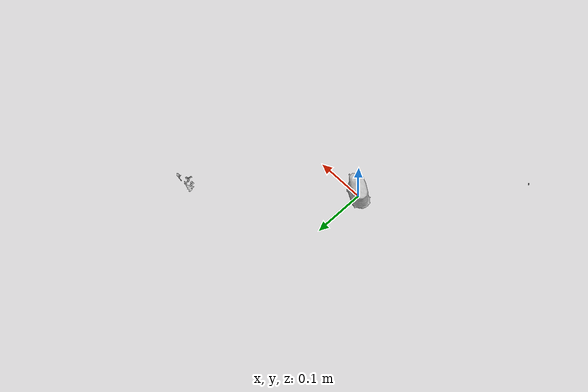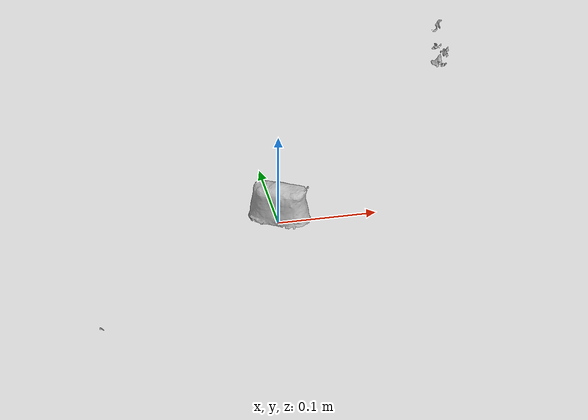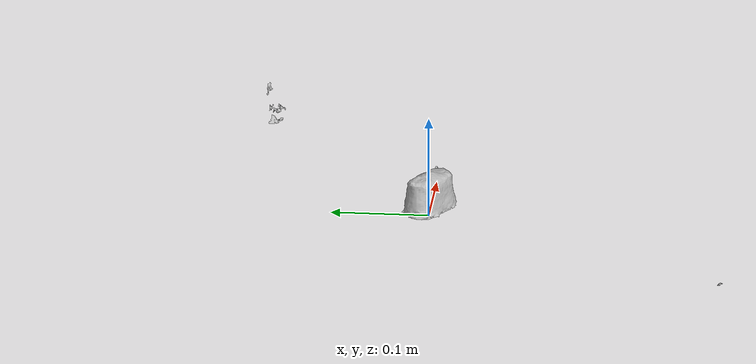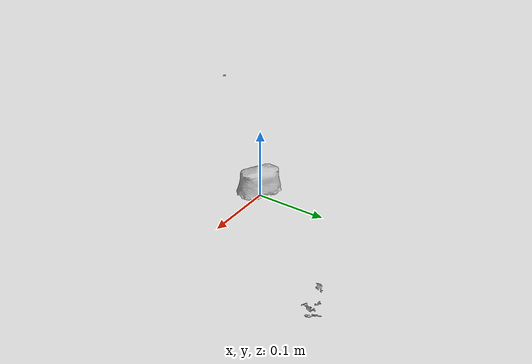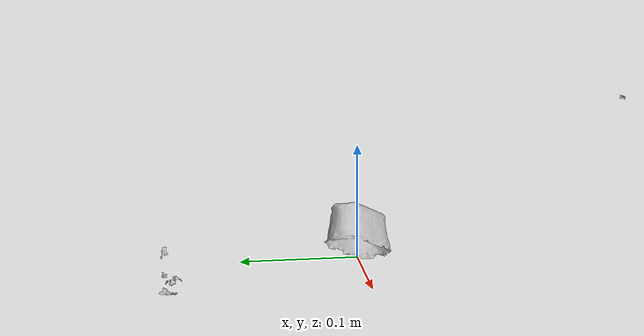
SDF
<?xml version="1.0" ?>
<sdf version="1.4">
  <model name="038_padlock">
    <pose>0 0 0  0 0 0</pose>
    <link name="body">
      <inertial>
        <!-- Volume:  5.8612717000e-05 -->
        <mass> 1.0 </mass>
        <!-- Center of mass:  6.6590000000e-05 -1.6314200000e-03  2.2010170000e-02 -->
        <pose>  6.6590000000e-05 -1.6314200000e-03  2.2010170000e-02 0 0 0 </pose>
        <!-- Inertia matrix -->
        <inertia>
          <ixx>  2.2580320923e-04 </ixx>
          <ixy>  6.2214196622e-05 </ixy>
          <ixz>  1.0951889502e-06 </ixz>
          <iyy>  2.8657913435e-04 </iyy>
          <iyz> -2.5531848319e-06 </iyz>
          <izz>  2.6992301517e-04 </izz>
        </inertia>
      </inertial>
      <visual name="visual">
        <geometry>
          <mesh>
            <uri>model://038_padlock/nontextured.stl</uri>
          </mesh>
        </geometry>
      </visual>
      <collision name="collision">
        <geometry>
          <mesh>
            <uri>model://038_padlock/nontextured.stl</uri>
          </mesh>
        </geometry>
        <max_contacts>10</max_contacts>
        <surface>
          <friction>
            <ode>
              <mu>0.8</mu>
              <mu2>0.8</mu2>
              <slip1>0</slip1>
              <slip2>0</slip2>
            </ode>
            <torsional>
              <ode/>
            </torsional>
          </friction>
          <contact>
            <ode>
              <kp>1000000.0</kp>
              <kd>1.0</kd>
              <max_vel>0.0</max_vel>
            </ode>
          </contact>
        </surface>
      </collision>
    </link>
  </model>
</sdf>
